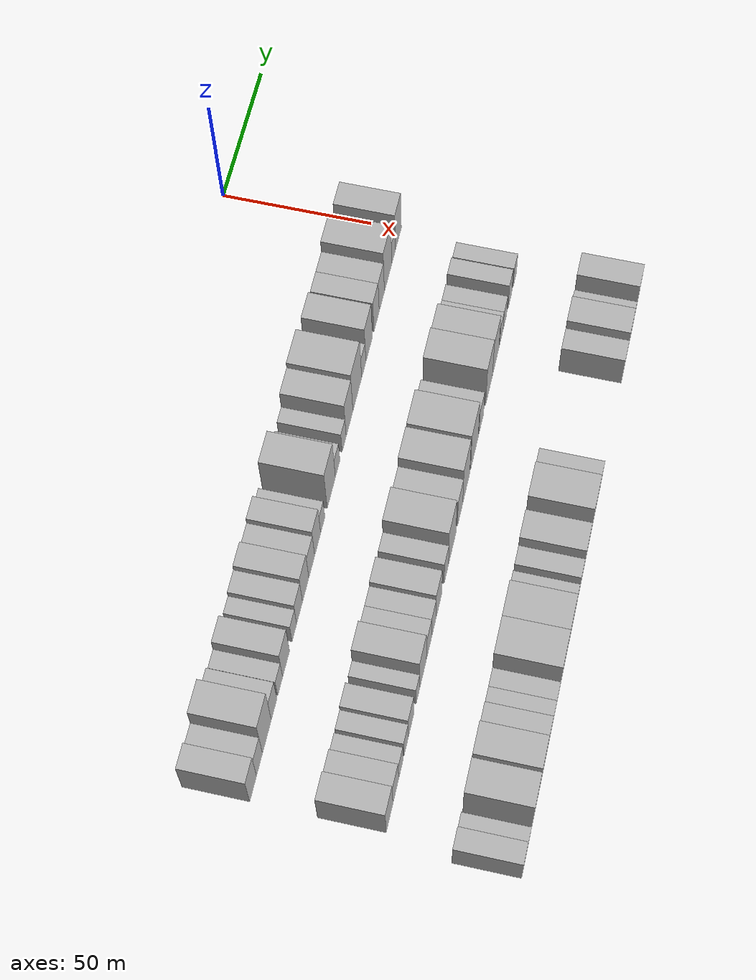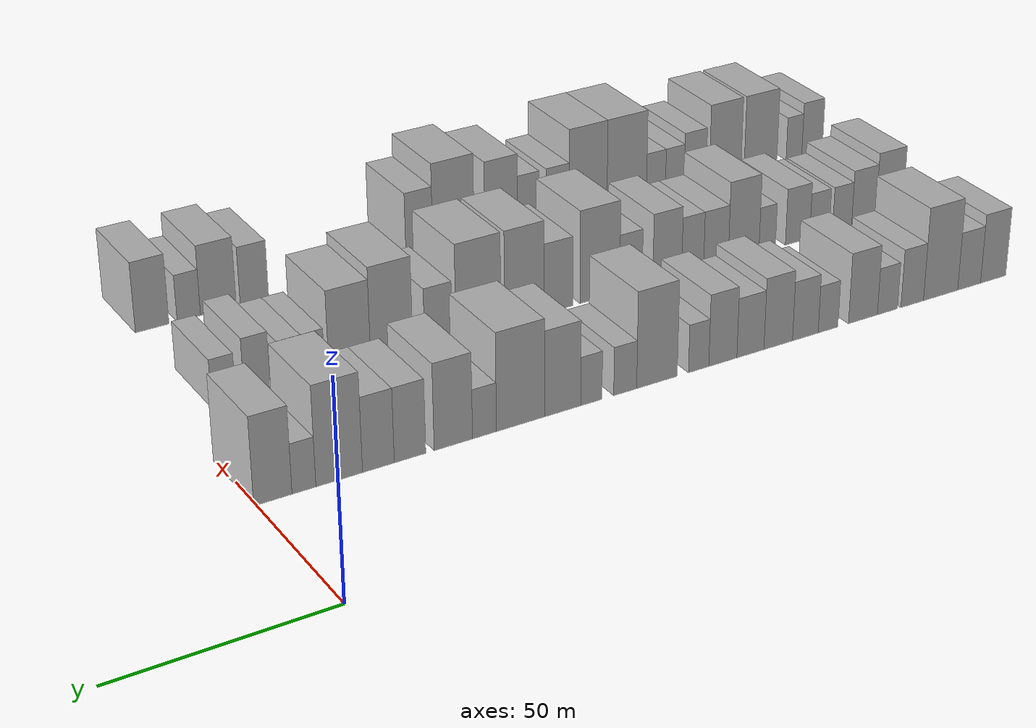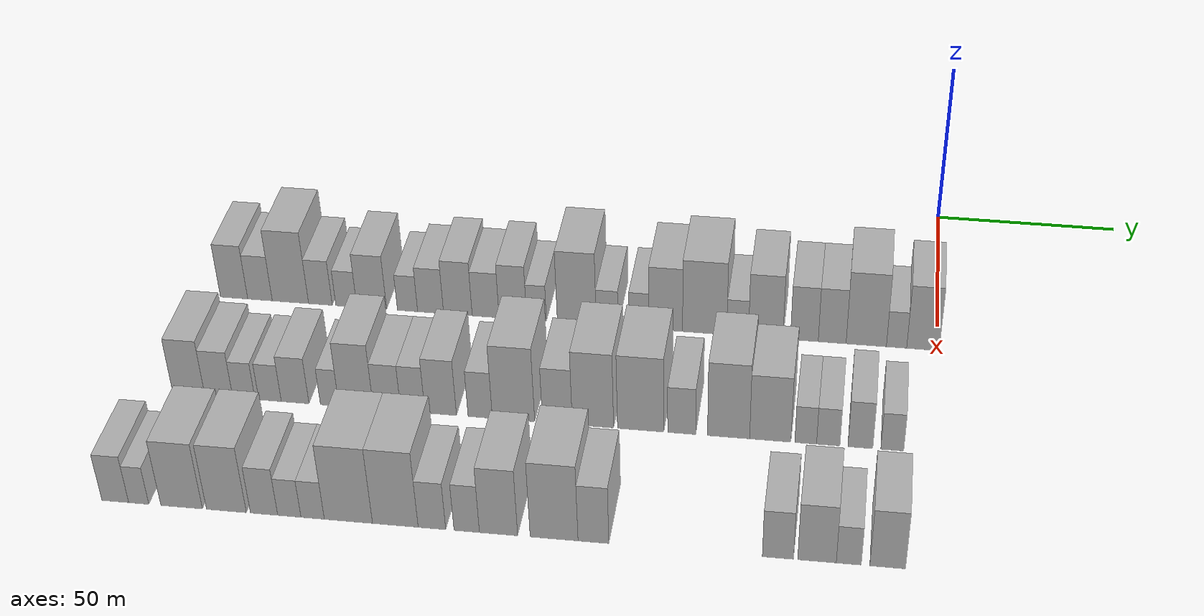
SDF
<sdf version="1.6">
 <world name="default">
  <model name="building_23">
   <static>1</static>
   <pose>50.0000 -191.5020 0 0.000000 0.000000 0.000000</pose>
   <link name="link">
    <pose>0 0 9.00 0 0 0</pose>
    <collision name="collision"><geometry><box><size>20.0000 7.6802 18.0000</size></box></geometry></collision>
    <visual name="visual">
     <cast_shadows>0</cast_shadows>
     <geometry><box><size>20.0000 7.6802 18.0000</size></box></geometry>
     <material>
      <script>
       <uri>model://HANNAS_wall/materials/scripts</uri>
       <uri>model://HANNAS_wall/materials/textures</uri>
       <name>vrc/HANNAS_wall</name>
      </script>
     </material>
    </visual>
   </link>
  </model>
  <model name="building_24">
   <static>1</static>
   <pose>50.0000 -184.2094 0 0.000000 0.000000 0.000000</pose>
   <link name="link">
    <pose>0 0 7.50 0 0 0</pose>
    <collision name="collision"><geometry><box><size>20.0000 6.9049 15.0000</size></box></geometry></collision>
    <visual name="visual">
     <cast_shadows>0</cast_shadows>
     <geometry><box><size>20.0000 6.9049 15.0000</size></box></geometry>
     <material>
      <script>
       <uri>model://HANNAS_wall/materials/scripts</uri>
       <uri>model://HANNAS_wall/materials/textures</uri>
       <name>vrc/HANNAS_wall</name>
      </script>
     </material>
    </visual>
   </link>
  </model>
  <model name="building_25">
   <static>1</static>
   <pose>50.0000 -175.6694 0 0.000000 0.000000 0.000000</pose>
   <link name="link">
    <pose>0 0 12.00 0 0 0</pose>
    <collision name="collision"><geometry><box><size>20.0000 10.1751 24.0000</size></box></geometry></collision>
    <visual name="visual">
     <cast_shadows>0</cast_shadows>
     <geometry><box><size>20.0000 10.1751 24.0000</size></box></geometry>
     <material>
      <script>
       <uri>model://HANNAS_wall/materials/scripts</uri>
       <uri>model://HANNAS_wall/materials/textures</uri>
       <name>vrc/HANNAS_wall</name>
      </script>
     </material>
    </visual>
   </link>
  </model>
  <model name="building_26">
   <static>1</static>
   <pose>50.0000 -167.2690 0 0.000000 0.000000 0.000000</pose>
   <link name="link">
    <pose>0 0 7.50 0 0 0</pose>
    <collision name="collision"><geometry><box><size>20.0000 6.6258 15.0000</size></box></geometry></collision>
    <visual name="visual">
     <cast_shadows>0</cast_shadows>
     <geometry><box><size>20.0000 6.6258 15.0000</size></box></geometry>
     <material>
      <script>
       <uri>model://HANNAS_wall/materials/scripts</uri>
       <uri>model://HANNAS_wall/materials/textures</uri>
       <name>vrc/HANNAS_wall</name>
      </script>
     </material>
    </visual>
   </link>
  </model>
  <model name="building_27">
   <static>1</static>
   <pose>50.0000 -160.0343 0 0.000000 0.000000 0.000000</pose>
   <link name="link">
    <pose>0 0 6.00 0 0 0</pose>
    <collision name="collision"><geometry><box><size>20.0000 5.8437 12.0000</size></box></geometry></collision>
    <visual name="visual">
     <cast_shadows>0</cast_shadows>
     <geometry><box><size>20.0000 5.8437 12.0000</size></box></geometry>
     <material>
      <script>
       <uri>model://HANNAS_wall/materials/scripts</uri>
       <uri>model://HANNAS_wall/materials/textures</uri>
       <name>vrc/HANNAS_wall</name>
      </script>
     </material>
    </visual>
   </link>
  </model>
  <model name="building_28">
   <static>1</static>
   <pose>50.0000 -152.9661 0 0.000000 0.000000 0.000000</pose>
   <link name="link">
    <pose>0 0 9.00 0 0 0</pose>
    <collision name="collision"><geometry><box><size>20.0000 8.2926 18.0000</size></box></geometry></collision>
    <visual name="visual">
     <cast_shadows>0</cast_shadows>
     <geometry><box><size>20.0000 8.2926 18.0000</size></box></geometry>
     <material>
      <script>
       <uri>model://HANNAS_wall/materials/scripts</uri>
       <uri>model://HANNAS_wall/materials/textures</uri>
       <name>vrc/HANNAS_wall</name>
      </script>
     </material>
    </visual>
   </link>
  </model>
  <model name="building_29">
   <static>1</static>
   <pose>50.0000 -143.0252 0 0.000000 0.000000 0.000000</pose>
   <link name="link">
    <pose>0 0 6.00 0 0 0</pose>
    <collision name="collision"><geometry><box><size>20.0000 5.5892 12.0000</size></box></geometry></collision>
    <visual name="visual">
     <cast_shadows>0</cast_shadows>
     <geometry><box><size>20.0000 5.5892 12.0000</size></box></geometry>
     <material>
      <script>
       <uri>model://HANNAS_wall/materials/scripts</uri>
       <uri>model://HANNAS_wall/materials/textures</uri>
       <name>vrc/HANNAS_wall</name>
      </script>
     </material>
    </visual>
   </link>
  </model>
  <model name="building_30">
   <static>1</static>
   <pose>50.0000 -136.6404 0 0.000000 0.000000 0.000000</pose>
   <link name="link">
    <pose>0 0 7.50 0 0 0</pose>
    <collision name="collision"><geometry><box><size>20.0000 7.1805 15.0000</size></box></geometry></collision>
    <visual name="visual">
     <cast_shadows>0</cast_shadows>
     <geometry><box><size>20.0000 7.1805 15.0000</size></box></geometry>
     <material>
      <script>
       <uri>model://HANNAS_wall/materials/scripts</uri>
       <uri>model://HANNAS_wall/materials/textures</uri>
       <name>vrc/HANNAS_wall</name>
      </script>
     </material>
    </visual>
   </link>
  </model>
  <model name="building_31">
   <static>1</static>
   <pose>50.0000 -129.1069 0 0.000000 0.000000 0.000000</pose>
   <link name="link">
    <pose>0 0 9.00 0 0 0</pose>
    <collision name="collision"><geometry><box><size>20.0000 7.8865 18.0000</size></box></geometry></collision>
    <visual name="visual">
     <cast_shadows>0</cast_shadows>
     <geometry><box><size>20.0000 7.8865 18.0000</size></box></geometry>
     <material>
      <script>
       <uri>model://HANNAS_wall/materials/scripts</uri>
       <uri>model://HANNAS_wall/materials/textures</uri>
       <name>vrc/HANNAS_wall</name>
      </script>
     </material>
    </visual>
   </link>
  </model>
  <model name="building_32">
   <static>1</static>
   <pose>50.0000 -121.4697 0 0.000000 0.000000 0.000000</pose>
   <link name="link">
    <pose>0 0 7.50 0 0 0</pose>
    <collision name="collision"><geometry><box><size>20.0000 7.3879 15.0000</size></box></geometry></collision>
    <visual name="visual">
     <cast_shadows>0</cast_shadows>
     <geometry><box><size>20.0000 7.3879 15.0000</size></box></geometry>
     <material>
      <script>
       <uri>model://HANNAS_wall/materials/scripts</uri>
       <uri>model://HANNAS_wall/materials/textures</uri>
       <name>vrc/HANNAS_wall</name>
      </script>
     </material>
    </visual>
   </link>
  </model>
  <model name="building_33">
   <static>1</static>
   <pose>50.0000 -113.9936 0 0.000000 0.000000 0.000000</pose>
   <link name="link">
    <pose>0 0 9.00 0 0 0</pose>
    <collision name="collision"><geometry><box><size>20.0000 7.5643 18.0000</size></box></geometry></collision>
    <visual name="visual">
     <cast_shadows>0</cast_shadows>
     <geometry><box><size>20.0000 7.5643 18.0000</size></box></geometry>
     <material>
      <script>
       <uri>model://HANNAS_wall/materials/scripts</uri>
       <uri>model://HANNAS_wall/materials/textures</uri>
       <name>vrc/HANNAS_wall</name>
      </script>
     </material>
    </visual>
   </link>
  </model>
  <model name="building_34">
   <static>1</static>
   <pose>50.0000 -107.5072 0 0.000000 0.000000 0.000000</pose>
   <link name="link">
    <pose>0 0 6.00 0 0 0</pose>
    <collision name="collision"><geometry><box><size>20.0000 5.4086 12.0000</size></box></geometry></collision>
    <visual name="visual">
     <cast_shadows>0</cast_shadows>
     <geometry><box><size>20.0000 5.4086 12.0000</size></box></geometry>
     <material>
      <script>
       <uri>model://HANNAS_wall/materials/scripts</uri>
       <uri>model://HANNAS_wall/materials/textures</uri>
       <name>vrc/HANNAS_wall</name>
      </script>
     </material>
    </visual>
   </link>
  </model>
  <model name="building_35">
   <static>1</static>
   <pose>50.0000 -96.5048 0 0.000000 0.000000 0.000000</pose>
   <link name="link">
    <pose>0 0 12.00 0 0 0</pose>
    <collision name="collision"><geometry><box><size>20.0000 10.5963 24.0000</size></box></geometry></collision>
    <visual name="visual">
     <cast_shadows>0</cast_shadows>
     <geometry><box><size>20.0000 10.5963 24.0000</size></box></geometry>
     <material>
      <script>
       <uri>model://HANNAS_wall/materials/scripts</uri>
       <uri>model://HANNAS_wall/materials/textures</uri>
       <name>vrc/HANNAS_wall</name>
      </script>
     </material>
    </visual>
   </link>
  </model>
  <model name="building_36">
   <static>1</static>
   <pose>50.0000 -88.2422 0 0.000000 0.000000 0.000000</pose>
   <link name="link">
    <pose>0 0 6.00 0 0 0</pose>
    <collision name="collision"><geometry><box><size>20.0000 5.9288 12.0000</size></box></geometry></collision>
    <visual name="visual">
     <cast_shadows>0</cast_shadows>
     <geometry><box><size>20.0000 5.9288 12.0000</size></box></geometry>
     <material>
      <script>
       <uri>model://HANNAS_wall/materials/scripts</uri>
       <uri>model://HANNAS_wall/materials/textures</uri>
       <name>vrc/HANNAS_wall</name>
      </script>
     </material>
    </visual>
   </link>
  </model>
  <model name="building_37">
   <static>1</static>
   <pose>50.0000 -79.5897 0 0.000000 0.000000 0.000000</pose>
   <link name="link">
    <pose>0 0 6.00 0 0 0</pose>
    <collision name="collision"><geometry><box><size>20.0000 5.3763 12.0000</size></box></geometry></collision>
    <visual name="visual">
     <cast_shadows>0</cast_shadows>
     <geometry><box><size>20.0000 5.3763 12.0000</size></box></geometry>
     <material>
      <script>
       <uri>model://HANNAS_wall/materials/scripts</uri>
       <uri>model://HANNAS_wall/materials/textures</uri>
       <name>vrc/HANNAS_wall</name>
      </script>
     </material>
    </visual>
   </link>
  </model>
  <model name="building_38">
   <static>1</static>
   <pose>50.0000 -72.3623 0 0.000000 0.000000 0.000000</pose>
   <link name="link">
    <pose>0 0 10.50 0 0 0</pose>
    <collision name="collision"><geometry><box><size>20.0000 9.0786 21.0000</size></box></geometry></collision>
    <visual name="visual">
     <cast_shadows>0</cast_shadows>
     <geometry><box><size>20.0000 9.0786 21.0000</size></box></geometry>
     <material>
      <script>
       <uri>model://HANNAS_wall/materials/scripts</uri>
       <uri>model://HANNAS_wall/materials/textures</uri>
       <name>vrc/HANNAS_wall</name>
      </script>
     </material>
    </visual>
   </link>
  </model>
  <model name="building_39">
   <static>1</static>
   <pose>50.0000 -61.8689 0 0.000000 0.000000 0.000000</pose>
   <link name="link">
    <pose>0 0 12.00 0 0 0</pose>
    <collision name="collision"><geometry><box><size>20.0000 11.9081 24.0000</size></box></geometry></collision>
    <visual name="visual">
     <cast_shadows>0</cast_shadows>
     <geometry><box><size>20.0000 11.9081 24.0000</size></box></geometry>
     <material>
      <script>
       <uri>model://HANNAS_wall/materials/scripts</uri>
       <uri>model://HANNAS_wall/materials/textures</uri>
       <name>vrc/HANNAS_wall</name>
      </script>
     </material>
    </visual>
   </link>
  </model>
  <model name="building_40">
   <static>1</static>
   <pose>50.0000 -53.0002 0 0.000000 0.000000 0.000000</pose>
   <link name="link">
    <pose>0 0 6.00 0 0 0</pose>
    <collision name="collision"><geometry><box><size>20.0000 5.8294 12.0000</size></box></geometry></collision>
    <visual name="visual">
     <cast_shadows>0</cast_shadows>
     <geometry><box><size>20.0000 5.8294 12.0000</size></box></geometry>
     <material>
      <script>
       <uri>model://HANNAS_wall/materials/scripts</uri>
       <uri>model://HANNAS_wall/materials/textures</uri>
       <name>vrc/HANNAS_wall</name>
      </script>
     </material>
    </visual>
   </link>
  </model>
  <model name="building_41">
   <static>1</static>
   <pose>50.0000 -45.4826 0 0.000000 0.000000 0.000000</pose>
   <link name="link">
    <pose>0 0 10.50 0 0 0</pose>
    <collision name="collision"><geometry><box><size>20.0000 9.2058 21.0000</size></box></geometry></collision>
    <visual name="visual">
     <cast_shadows>0</cast_shadows>
     <geometry><box><size>20.0000 9.2058 21.0000</size></box></geometry>
     <material>
      <script>
       <uri>model://HANNAS_wall/materials/scripts</uri>
       <uri>model://HANNAS_wall/materials/textures</uri>
       <name>vrc/HANNAS_wall</name>
      </script>
     </material>
    </visual>
   </link>
  </model>
  <model name="building_42">
   <static>1</static>
   <pose>50.0000 -35.1755 0 0.000000 0.000000 0.000000</pose>
   <link name="link">
    <pose>0 0 9.00 0 0 0</pose>
    <collision name="collision"><geometry><box><size>20.0000 7.4083 18.0000</size></box></geometry></collision>
    <visual name="visual">
     <cast_shadows>0</cast_shadows>
     <geometry><box><size>20.0000 7.4083 18.0000</size></box></geometry>
     <material>
      <script>
       <uri>model://HANNAS_wall/materials/scripts</uri>
       <uri>model://HANNAS_wall/materials/textures</uri>
       <name>vrc/HANNAS_wall</name>
      </script>
     </material>
    </visual>
   </link>
  </model>
  <model name="building_43">
   <static>1</static>
   <pose>50.0000 -27.7676 0 0.000000 0.000000 0.000000</pose>
   <link name="link">
    <pose>0 0 9.00 0 0 0</pose>
    <collision name="collision"><geometry><box><size>20.0000 7.4075 18.0000</size></box></geometry></collision>
    <visual name="visual">
     <cast_shadows>0</cast_shadows>
     <geometry><box><size>20.0000 7.4075 18.0000</size></box></geometry>
     <material>
      <script>
       <uri>model://HANNAS_wall/materials/scripts</uri>
       <uri>model://HANNAS_wall/materials/textures</uri>
       <name>vrc/HANNAS_wall</name>
      </script>
     </material>
    </visual>
   </link>
  </model>
  <model name="building_44">
   <static>1</static>
   <pose>50.0000 -18.7248 0 0.000000 0.000000 0.000000</pose>
   <link name="link">
    <pose>0 0 12.00 0 0 0</pose>
    <collision name="collision"><geometry><box><size>20.0000 10.6780 24.0000</size></box></geometry></collision>
    <visual name="visual">
     <cast_shadows>0</cast_shadows>
     <geometry><box><size>20.0000 10.6780 24.0000</size></box></geometry>
     <material>
      <script>
       <uri>model://HANNAS_wall/materials/scripts</uri>
       <uri>model://HANNAS_wall/materials/textures</uri>
       <name>vrc/HANNAS_wall</name>
      </script>
     </material>
    </visual>
   </link>
  </model>
  <model name="building_45">
   <static>1</static>
   <pose>50.0000 -10.6972 0 0.000000 0.000000 0.000000</pose>
   <link name="link">
    <pose>0 0 6.00 0 0 0</pose>
    <collision name="collision"><geometry><box><size>20.0000 5.3772 12.0000</size></box></geometry></collision>
    <visual name="visual">
     <cast_shadows>0</cast_shadows>
     <geometry><box><size>20.0000 5.3772 12.0000</size></box></geometry>
     <material>
      <script>
       <uri>model://HANNAS_wall/materials/scripts</uri>
       <uri>model://HANNAS_wall/materials/textures</uri>
       <name>vrc/HANNAS_wall</name>
      </script>
     </material>
    </visual>
   </link>
  </model>
  <model name="building_46">
   <static>1</static>
   <pose>50.0000 -3.7331 0 0.000000 0.000000 0.000000</pose>
   <link name="link">
    <pose>0 0 10.50 0 0 0</pose>
    <collision name="collision"><geometry><box><size>20.0000 8.5511 21.0000</size></box></geometry></collision>
    <visual name="visual">
     <cast_shadows>0</cast_shadows>
     <geometry><box><size>20.0000 8.5511 21.0000</size></box></geometry>
     <material>
      <script>
       <uri>model://HANNAS_wall/materials/scripts</uri>
       <uri>model://HANNAS_wall/materials/textures</uri>
       <name>vrc/HANNAS_wall</name>
      </script>
     </material>
    </visual>
   </link>
  </model>
  <model name="building_111">
   <static>1</static>
   <pose>90.0000 -191.3999 0 0.000000 0.000000 0.000000</pose>
   <link name="link">
    <pose>0 0 9.00 0 0 0</pose>
    <collision name="collision"><geometry><box><size>20.0000 8.4954 18.0000</size></box></geometry></collision>
    <visual name="visual">
     <cast_shadows>0</cast_shadows>
     <geometry><box><size>20.0000 8.4954 18.0000</size></box></geometry>
     <material>
      <script>
       <uri>model://HANNAS_wall/materials/scripts</uri>
       <uri>model://HANNAS_wall/materials/textures</uri>
       <name>vrc/HANNAS_wall</name>
      </script>
     </material>
    </visual>
   </link>
  </model>
  <model name="building_112">
   <static>1</static>
   <pose>90.0000 -183.4372 0 0.000000 0.000000 0.000000</pose>
   <link name="link">
    <pose>0 0 7.50 0 0 0</pose>
    <collision name="collision"><geometry><box><size>20.0000 7.4302 15.0000</size></box></geometry></collision>
    <visual name="visual">
     <cast_shadows>0</cast_shadows>
     <geometry><box><size>20.0000 7.4302 15.0000</size></box></geometry>
     <material>
      <script>
       <uri>model://HANNAS_wall/materials/scripts</uri>
       <uri>model://HANNAS_wall/materials/textures</uri>
       <name>vrc/HANNAS_wall</name>
      </script>
     </material>
    </visual>
   </link>
  </model>
  <model name="building_113">
   <static>1</static>
   <pose>90.0000 -176.7924 0 0.000000 0.000000 0.000000</pose>
   <link name="link">
    <pose>0 0 6.00 0 0 0</pose>
    <collision name="collision"><geometry><box><size>20.0000 5.8593 12.0000</size></box></geometry></collision>
    <visual name="visual">
     <cast_shadows>0</cast_shadows>
     <geometry><box><size>20.0000 5.8593 12.0000</size></box></geometry>
     <material>
      <script>
       <uri>model://HANNAS_wall/materials/scripts</uri>
       <uri>model://HANNAS_wall/materials/textures</uri>
       <name>vrc/HANNAS_wall</name>
      </script>
     </material>
    </visual>
   </link>
  </model>
  <model name="building_114">
   <static>1</static>
   <pose>90.0000 -169.8938 0 0.000000 0.000000 0.000000</pose>
   <link name="link">
    <pose>0 0 6.00 0 0 0</pose>
    <collision name="collision"><geometry><box><size>20.0000 5.9379 12.0000</size></box></geometry></collision>
    <visual name="visual">
     <cast_shadows>0</cast_shadows>
     <geometry><box><size>20.0000 5.9379 12.0000</size></box></geometry>
     <material>
      <script>
       <uri>model://HANNAS_wall/materials/scripts</uri>
       <uri>model://HANNAS_wall/materials/textures</uri>
       <name>vrc/HANNAS_wall</name>
      </script>
     </material>
    </visual>
   </link>
  </model>
  <model name="building_115">
   <static>1</static>
   <pose>90.0000 -163.2886 0 0.000000 0.000000 0.000000</pose>
   <link name="link">
    <pose>0 0 7.50 0 0 0</pose>
    <collision name="collision"><geometry><box><size>20.0000 7.2726 15.0000</size></box></geometry></collision>
    <visual name="visual">
     <cast_shadows>0</cast_shadows>
     <geometry><box><size>20.0000 7.2726 15.0000</size></box></geometry>
     <material>
      <script>
       <uri>model://HANNAS_wall/materials/scripts</uri>
       <uri>model://HANNAS_wall/materials/textures</uri>
       <name>vrc/HANNAS_wall</name>
      </script>
     </material>
    </visual>
   </link>
  </model>
  <model name="building_116">
   <static>1</static>
   <pose>90.0000 -154.2162 0 0.000000 0.000000 0.000000</pose>
   <link name="link">
    <pose>0 0 6.00 0 0 0</pose>
    <collision name="collision"><geometry><box><size>20.0000 4.8722 12.0000</size></box></geometry></collision>
    <visual name="visual">
     <cast_shadows>0</cast_shadows>
     <geometry><box><size>20.0000 4.8722 12.0000</size></box></geometry>
     <material>
      <script>
       <uri>model://HANNAS_wall/materials/scripts</uri>
       <uri>model://HANNAS_wall/materials/textures</uri>
       <name>vrc/HANNAS_wall</name>
      </script>
     </material>
    </visual>
   </link>
  </model>
  <model name="building_117">
   <static>1</static>
   <pose>90.0000 -147.2846 0 0.000000 0.000000 0.000000</pose>
   <link name="link">
    <pose>0 0 10.50 0 0 0</pose>
    <collision name="collision"><geometry><box><size>20.0000 8.9911 21.0000</size></box></geometry></collision>
    <visual name="visual">
     <cast_shadows>0</cast_shadows>
     <geometry><box><size>20.0000 8.9911 21.0000</size></box></geometry>
     <material>
      <script>
       <uri>model://HANNAS_wall/materials/scripts</uri>
       <uri>model://HANNAS_wall/materials/textures</uri>
       <name>vrc/HANNAS_wall</name>
      </script>
     </material>
    </visual>
   </link>
  </model>
  <model name="building_118">
   <static>1</static>
   <pose>90.0000 -139.2243 0 0.000000 0.000000 0.000000</pose>
   <link name="link">
    <pose>0 0 7.50 0 0 0</pose>
    <collision name="collision"><geometry><box><size>20.0000 7.1295 15.0000</size></box></geometry></collision>
    <visual name="visual">
     <cast_shadows>0</cast_shadows>
     <geometry><box><size>20.0000 7.1295 15.0000</size></box></geometry>
     <material>
      <script>
       <uri>model://HANNAS_wall/materials/scripts</uri>
       <uri>model://HANNAS_wall/materials/textures</uri>
       <name>vrc/HANNAS_wall</name>
      </script>
     </material>
    </visual>
   </link>
  </model>
  <model name="building_119">
   <static>1</static>
   <pose>90.0000 -132.5127 0 0.000000 0.000000 0.000000</pose>
   <link name="link">
    <pose>0 0 7.50 0 0 0</pose>
    <collision name="collision"><geometry><box><size>20.0000 6.2936 15.0000</size></box></geometry></collision>
    <visual name="visual">
     <cast_shadows>0</cast_shadows>
     <geometry><box><size>20.0000 6.2936 15.0000</size></box></geometry>
     <material>
      <script>
       <uri>model://HANNAS_wall/materials/scripts</uri>
       <uri>model://HANNAS_wall/materials/textures</uri>
       <name>vrc/HANNAS_wall</name>
      </script>
     </material>
    </visual>
   </link>
  </model>
  <model name="building_120">
   <static>1</static>
   <pose>90.0000 -125.2887 0 0.000000 0.000000 0.000000</pose>
   <link name="link">
    <pose>0 0 9.00 0 0 0</pose>
    <collision name="collision"><geometry><box><size>20.0000 8.1542 18.0000</size></box></geometry></collision>
    <visual name="visual">
     <cast_shadows>0</cast_shadows>
     <geometry><box><size>20.0000 8.1542 18.0000</size></box></geometry>
     <material>
      <script>
       <uri>model://HANNAS_wall/materials/scripts</uri>
       <uri>model://HANNAS_wall/materials/textures</uri>
       <name>vrc/HANNAS_wall</name>
      </script>
     </material>
    </visual>
   </link>
  </model>
  <model name="building_121">
   <static>1</static>
   <pose>90.0000 -115.0782 0 0.000000 0.000000 0.000000</pose>
   <link name="link">
    <pose>0 0 7.50 0 0 0</pose>
    <collision name="collision"><geometry><box><size>20.0000 6.2668 15.0000</size></box></geometry></collision>
    <visual name="visual">
     <cast_shadows>0</cast_shadows>
     <geometry><box><size>20.0000 6.2668 15.0000</size></box></geometry>
     <material>
      <script>
       <uri>model://HANNAS_wall/materials/scripts</uri>
       <uri>model://HANNAS_wall/materials/textures</uri>
       <name>vrc/HANNAS_wall</name>
      </script>
     </material>
    </visual>
   </link>
  </model>
  <model name="building_122">
   <static>1</static>
   <pose>90.0000 -106.4987 0 0.000000 0.000000 0.000000</pose>
   <link name="link">
    <pose>0 0 12.00 0 0 0</pose>
    <collision name="collision"><geometry><box><size>20.0000 10.8923 24.0000</size></box></geometry></collision>
    <visual name="visual">
     <cast_shadows>0</cast_shadows>
     <geometry><box><size>20.0000 10.8923 24.0000</size></box></geometry>
     <material>
      <script>
       <uri>model://HANNAS_wall/materials/scripts</uri>
       <uri>model://HANNAS_wall/materials/textures</uri>
       <name>vrc/HANNAS_wall</name>
      </script>
     </material>
    </visual>
   </link>
  </model>
  <model name="building_123">
   <static>1</static>
   <pose>90.0000 -95.2301 0 0.000000 0.000000 0.000000</pose>
   <link name="link">
    <pose>0 0 9.00 0 0 0</pose>
    <collision name="collision"><geometry><box><size>20.0000 7.6449 18.0000</size></box></geometry></collision>
    <visual name="visual">
     <cast_shadows>0</cast_shadows>
     <geometry><box><size>20.0000 7.6449 18.0000</size></box></geometry>
     <material>
      <script>
       <uri>model://HANNAS_wall/materials/scripts</uri>
       <uri>model://HANNAS_wall/materials/textures</uri>
       <name>vrc/HANNAS_wall</name>
      </script>
     </material>
    </visual>
   </link>
  </model>
  <model name="building_124">
   <static>1</static>
   <pose>90.0000 -86.1381 0 0.000000 0.000000 0.000000</pose>
   <link name="link">
    <pose>0 0 12.00 0 0 0</pose>
    <collision name="collision"><geometry><box><size>20.0000 10.5391 24.0000</size></box></geometry></collision>
    <visual name="visual">
     <cast_shadows>0</cast_shadows>
     <geometry><box><size>20.0000 10.5391 24.0000</size></box></geometry>
     <material>
      <script>
       <uri>model://HANNAS_wall/materials/scripts</uri>
       <uri>model://HANNAS_wall/materials/textures</uri>
       <name>vrc/HANNAS_wall</name>
      </script>
     </material>
    </visual>
   </link>
  </model>
  <model name="building_125">
   <static>1</static>
   <pose>90.0000 -73.9983 0 0.000000 0.000000 0.000000</pose>
   <link name="link">
    <pose>0 0 12.00 0 0 0</pose>
    <collision name="collision"><geometry><box><size>20.0000 11.7405 24.0000</size></box></geometry></collision>
    <visual name="visual">
     <cast_shadows>0</cast_shadows>
     <geometry><box><size>20.0000 11.7405 24.0000</size></box></geometry>
     <material>
      <script>
       <uri>model://HANNAS_wall/materials/scripts</uri>
       <uri>model://HANNAS_wall/materials/textures</uri>
       <name>vrc/HANNAS_wall</name>
      </script>
     </material>
    </visual>
   </link>
  </model>
  <model name="building_126">
   <static>1</static>
   <pose>90.0000 -63.5838 0 0.000000 0.000000 0.000000</pose>
   <link name="link">
    <pose>0 0 7.50 0 0 0</pose>
    <collision name="collision"><geometry><box><size>20.0000 7.0884 15.0000</size></box></geometry></collision>
    <visual name="visual">
     <cast_shadows>0</cast_shadows>
     <geometry><box><size>20.0000 7.0884 15.0000</size></box></geometry>
     <material>
      <script>
       <uri>model://HANNAS_wall/materials/scripts</uri>
       <uri>model://HANNAS_wall/materials/textures</uri>
       <name>vrc/HANNAS_wall</name>
      </script>
     </material>
    </visual>
   </link>
  </model>
  <model name="building_127">
   <static>1</static>
   <pose>90.0000 -51.7346 0 0.000000 0.000000 0.000000</pose>
   <link name="link">
    <pose>0 0 12.00 0 0 0</pose>
    <collision name="collision"><geometry><box><size>20.0000 10.6100 24.0000</size></box></geometry></collision>
    <visual name="visual">
     <cast_shadows>0</cast_shadows>
     <geometry><box><size>20.0000 10.6100 24.0000</size></box></geometry>
     <material>
      <script>
       <uri>model://HANNAS_wall/materials/scripts</uri>
       <uri>model://HANNAS_wall/materials/textures</uri>
       <name>vrc/HANNAS_wall</name>
      </script>
     </material>
    </visual>
   </link>
  </model>
  <model name="building_128">
   <static>1</static>
   <pose>90.0000 -41.2557 0 0.000000 0.000000 0.000000</pose>
   <link name="link">
    <pose>0 0 10.50 0 0 0</pose>
    <collision name="collision"><geometry><box><size>20.0000 10.3477 21.0000</size></box></geometry></collision>
    <visual name="visual">
     <cast_shadows>0</cast_shadows>
     <geometry><box><size>20.0000 10.3477 21.0000</size></box></geometry>
     <material>
      <script>
       <uri>model://HANNAS_wall/materials/scripts</uri>
       <uri>model://HANNAS_wall/materials/textures</uri>
       <name>vrc/HANNAS_wall</name>
      </script>
     </material>
    </visual>
   </link>
  </model>
  <model name="building_129">
   <static>1</static>
   <pose>90.0000 -32.3605 0 0.000000 0.000000 0.000000</pose>
   <link name="link">
    <pose>0 0 6.00 0 0 0</pose>
    <collision name="collision"><geometry><box><size>20.0000 5.4427 12.0000</size></box></geometry></collision>
    <visual name="visual">
     <cast_shadows>0</cast_shadows>
     <geometry><box><size>20.0000 5.4427 12.0000</size></box></geometry>
     <material>
      <script>
       <uri>model://HANNAS_wall/materials/scripts</uri>
       <uri>model://HANNAS_wall/materials/textures</uri>
       <name>vrc/HANNAS_wall</name>
      </script>
     </material>
    </visual>
   </link>
  </model>
  <model name="building_130">
   <static>1</static>
   <pose>90.0000 -26.7280 0 0.000000 0.000000 0.000000</pose>
   <link name="link">
    <pose>0 0 6.00 0 0 0</pose>
    <collision name="collision"><geometry><box><size>20.0000 5.8224 12.0000</size></box></geometry></collision>
    <visual name="visual">
     <cast_shadows>0</cast_shadows>
     <geometry><box><size>20.0000 5.8224 12.0000</size></box></geometry>
     <material>
      <script>
       <uri>model://HANNAS_wall/materials/scripts</uri>
       <uri>model://HANNAS_wall/materials/textures</uri>
       <name>vrc/HANNAS_wall</name>
      </script>
     </material>
    </visual>
   </link>
  </model>
  <model name="building_131">
   <static>1</static>
   <pose>90.0000 -18.7254 0 0.000000 0.000000 0.000000</pose>
   <link name="link">
    <pose>0 0 7.50 0 0 0</pose>
    <collision name="collision"><geometry><box><size>20.0000 6.1828 15.0000</size></box></geometry></collision>
    <visual name="visual">
     <cast_shadows>0</cast_shadows>
     <geometry><box><size>20.0000 6.1828 15.0000</size></box></geometry>
     <material>
      <script>
       <uri>model://HANNAS_wall/materials/scripts</uri>
       <uri>model://HANNAS_wall/materials/textures</uri>
       <name>vrc/HANNAS_wall</name>
      </script>
     </material>
    </visual>
   </link>
  </model>
  <model name="building_132">
   <static>1</static>
   <pose>90.0000 -10.7985 0 0.000000 0.000000 0.000000</pose>
   <link name="link">
    <pose>0 0 6.00 0 0 0</pose>
    <collision name="collision"><geometry><box><size>20.0000 5.6709 12.0000</size></box></geometry></collision>
    <visual name="visual">
     <cast_shadows>0</cast_shadows>
     <geometry><box><size>20.0000 5.6709 12.0000</size></box></geometry>
     <material>
      <script>
       <uri>model://HANNAS_wall/materials/scripts</uri>
       <uri>model://HANNAS_wall/materials/textures</uri>
       <name>vrc/HANNAS_wall</name>
      </script>
     </material>
    </visual>
   </link>
  </model>
  <model name="building_197">
   <static>1</static>
   <pose>130.0000 -196.8026 0 0.000000 0.000000 0.000000</pose>
   <link name="link">
    <pose>0 0 7.50 0 0 0</pose>
    <collision name="collision"><geometry><box><size>20.0000 6.6764 15.0000</size></box></geometry></collision>
    <visual name="visual">
     <cast_shadows>0</cast_shadows>
     <geometry><box><size>20.0000 6.6764 15.0000</size></box></geometry>
     <material>
      <script>
       <uri>model://HANNAS_wall/materials/scripts</uri>
       <uri>model://HANNAS_wall/materials/textures</uri>
       <name>vrc/HANNAS_wall</name>
      </script>
     </material>
    </visual>
   </link>
  </model>
  <model name="building_198">
   <static>1</static>
   <pose>130.0000 -190.9548 0 0.000000 0.000000 0.000000</pose>
   <link name="link">
    <pose>0 0 6.00 0 0 0</pose>
    <collision name="collision"><geometry><box><size>20.0000 5.0191 12.0000</size></box></geometry></collision>
    <visual name="visual">
     <cast_shadows>0</cast_shadows>
     <geometry><box><size>20.0000 5.0191 12.0000</size></box></geometry>
     <material>
      <script>
       <uri>model://HANNAS_wall/materials/scripts</uri>
       <uri>model://HANNAS_wall/materials/textures</uri>
       <name>vrc/HANNAS_wall</name>
      </script>
     </material>
    </visual>
   </link>
  </model>
  <model name="building_199">
   <static>1</static>
   <pose>130.0000 -180.2744 0 0.000000 0.000000 0.000000</pose>
   <link name="link">
    <pose>0 0 10.50 0 0 0</pose>
    <collision name="collision"><geometry><box><size>20.0000 10.3417 21.0000</size></box></geometry></collision>
    <visual name="visual">
     <cast_shadows>0</cast_shadows>
     <geometry><box><size>20.0000 10.3417 21.0000</size></box></geometry>
     <material>
      <script>
       <uri>model://HANNAS_wall/materials/scripts</uri>
       <uri>model://HANNAS_wall/materials/textures</uri>
       <name>vrc/HANNAS_wall</name>
      </script>
     </material>
    </visual>
   </link>
  </model>
  <model name="building_200">
   <static>1</static>
   <pose>130.0000 -169.1721 0 0.000000 0.000000 0.000000</pose>
   <link name="link">
    <pose>0 0 10.50 0 0 0</pose>
    <collision name="collision"><geometry><box><size>20.0000 9.8630 21.0000</size></box></geometry></collision>
    <visual name="visual">
     <cast_shadows>0</cast_shadows>
     <geometry><box><size>20.0000 9.8630 21.0000</size></box></geometry>
     <material>
      <script>
       <uri>model://HANNAS_wall/materials/scripts</uri>
       <uri>model://HANNAS_wall/materials/textures</uri>
       <name>vrc/HANNAS_wall</name>
      </script>
     </material>
    </visual>
   </link>
  </model>
  <model name="building_201">
   <static>1</static>
   <pose>130.0000 -159.8825 0 0.000000 0.000000 0.000000</pose>
   <link name="link">
    <pose>0 0 7.50 0 0 0</pose>
    <collision name="collision"><geometry><box><size>20.0000 6.7161 15.0000</size></box></geometry></collision>
    <visual name="visual">
     <cast_shadows>0</cast_shadows>
     <geometry><box><size>20.0000 6.7161 15.0000</size></box></geometry>
     <material>
      <script>
       <uri>model://HANNAS_wall/materials/scripts</uri>
       <uri>model://HANNAS_wall/materials/textures</uri>
       <name>vrc/HANNAS_wall</name>
      </script>
     </material>
    </visual>
   </link>
  </model>
  <model name="building_202">
   <static>1</static>
   <pose>130.0000 -153.6751 0 0.000000 0.000000 0.000000</pose>
   <link name="link">
    <pose>0 0 6.00 0 0 0</pose>
    <collision name="collision"><geometry><box><size>20.0000 5.6987 12.0000</size></box></geometry></collision>
    <visual name="visual">
     <cast_shadows>0</cast_shadows>
     <geometry><box><size>20.0000 5.6987 12.0000</size></box></geometry>
     <material>
      <script>
       <uri>model://HANNAS_wall/materials/scripts</uri>
       <uri>model://HANNAS_wall/materials/textures</uri>
       <name>vrc/HANNAS_wall</name>
      </script>
     </material>
    </visual>
   </link>
  </model>
  <model name="building_203">
   <static>1</static>
   <pose>130.0000 -147.9579 0 0.000000 0.000000 0.000000</pose>
   <link name="link">
    <pose>0 0 6.00 0 0 0</pose>
    <collision name="collision"><geometry><box><size>20.0000 5.7356 12.0000</size></box></geometry></collision>
    <visual name="visual">
     <cast_shadows>0</cast_shadows>
     <geometry><box><size>20.0000 5.7356 12.0000</size></box></geometry>
     <material>
      <script>
       <uri>model://HANNAS_wall/materials/scripts</uri>
       <uri>model://HANNAS_wall/materials/textures</uri>
       <name>vrc/HANNAS_wall</name>
      </script>
     </material>
    </visual>
   </link>
  </model>
  <model name="building_204">
   <static>1</static>
   <pose>130.0000 -139.2034 0 0.000000 0.000000 0.000000</pose>
   <link name="link">
    <pose>0 0 12.00 0 0 0</pose>
    <collision name="collision"><geometry><box><size>20.0000 11.7734 24.0000</size></box></geometry></collision>
    <visual name="visual">
     <cast_shadows>0</cast_shadows>
     <geometry><box><size>20.0000 11.7734 24.0000</size></box></geometry>
     <material>
      <script>
       <uri>model://HANNAS_wall/materials/scripts</uri>
       <uri>model://HANNAS_wall/materials/textures</uri>
       <name>vrc/HANNAS_wall</name>
      </script>
     </material>
    </visual>
   </link>
  </model>
  <model name="building_205">
   <static>1</static>
   <pose>130.0000 -127.7660 0 0.000000 0.000000 0.000000</pose>
   <link name="link">
    <pose>0 0 12.00 0 0 0</pose>
    <collision name="collision"><geometry><box><size>20.0000 11.1015 24.0000</size></box></geometry></collision>
    <visual name="visual">
     <cast_shadows>0</cast_shadows>
     <geometry><box><size>20.0000 11.1015 24.0000</size></box></geometry>
     <material>
      <script>
       <uri>model://HANNAS_wall/materials/scripts</uri>
       <uri>model://HANNAS_wall/materials/textures</uri>
       <name>vrc/HANNAS_wall</name>
      </script>
     </material>
    </visual>
   </link>
  </model>
  <model name="building_206">
   <static>1</static>
   <pose>130.0000 -118.8741 0 0.000000 0.000000 0.000000</pose>
   <link name="link">
    <pose>0 0 7.50 0 0 0</pose>
    <collision name="collision"><geometry><box><size>20.0000 6.6824 15.0000</size></box></geometry></collision>
    <visual name="visual">
     <cast_shadows>0</cast_shadows>
     <geometry><box><size>20.0000 6.6824 15.0000</size></box></geometry>
     <material>
      <script>
       <uri>model://HANNAS_wall/materials/scripts</uri>
       <uri>model://HANNAS_wall/materials/textures</uri>
       <name>vrc/HANNAS_wall</name>
      </script>
     </material>
    </visual>
   </link>
  </model>
  <model name="building_207">
   <static>1</static>
   <pose>130.0000 -110.4616 0 0.000000 0.000000 0.000000</pose>
   <link name="link">
    <pose>0 0 7.50 0 0 0</pose>
    <collision name="collision"><geometry><box><size>20.0000 6.1426 15.0000</size></box></geometry></collision>
    <visual name="visual">
     <cast_shadows>0</cast_shadows>
     <geometry><box><size>20.0000 6.1426 15.0000</size></box></geometry>
     <material>
      <script>
       <uri>model://HANNAS_wall/materials/scripts</uri>
       <uri>model://HANNAS_wall/materials/textures</uri>
       <name>vrc/HANNAS_wall</name>
      </script>
     </material>
    </visual>
   </link>
  </model>
  <model name="building_208">
   <static>1</static>
   <pose>130.0000 -102.7885 0 0.000000 0.000000 0.000000</pose>
   <link name="link">
    <pose>0 0 10.50 0 0 0</pose>
    <collision name="collision"><geometry><box><size>20.0000 9.2037 21.0000</size></box></geometry></collision>
    <visual name="visual">
     <cast_shadows>0</cast_shadows>
     <geometry><box><size>20.0000 9.2037 21.0000</size></box></geometry>
     <material>
      <script>
       <uri>model://HANNAS_wall/materials/scripts</uri>
       <uri>model://HANNAS_wall/materials/textures</uri>
       <name>vrc/HANNAS_wall</name>
      </script>
     </material>
    </visual>
   </link>
  </model>
  <model name="building_209">
   <static>1</static>
   <pose>130.0000 -89.4536 0 0.000000 0.000000 0.000000</pose>
   <link name="link">
    <pose>0 0 12.00 0 0 0</pose>
    <collision name="collision"><geometry><box><size>20.0000 11.4661 24.0000</size></box></geometry></collision>
    <visual name="visual">
     <cast_shadows>0</cast_shadows>
     <geometry><box><size>20.0000 11.4661 24.0000</size></box></geometry>
     <material>
      <script>
       <uri>model://HANNAS_wall/materials/scripts</uri>
       <uri>model://HANNAS_wall/materials/textures</uri>
       <name>vrc/HANNAS_wall</name>
      </script>
     </material>
    </visual>
   </link>
  </model>
  <model name="building_210">
   <static>1</static>
   <pose>130.0000 -80.0445 0 0.000000 0.000000 0.000000</pose>
   <link name="link">
    <pose>0 0 9.00 0 0 0</pose>
    <collision name="collision"><geometry><box><size>20.0000 7.3522 18.0000</size></box></geometry></collision>
    <visual name="visual">
     <cast_shadows>0</cast_shadows>
     <geometry><box><size>20.0000 7.3522 18.0000</size></box></geometry>
     <material>
      <script>
       <uri>model://HANNAS_wall/materials/scripts</uri>
       <uri>model://HANNAS_wall/materials/textures</uri>
       <name>vrc/HANNAS_wall</name>
      </script>
     </material>
    </visual>
   </link>
  </model>
  <model name="building_211">
   <static>1</static>
   <pose>130.0000 -36.4277 0 0.000000 0.000000 0.000000</pose>
   <link name="link">
    <pose>0 0 7.50 0 0 0</pose>
    <collision name="collision"><geometry><box><size>20.0000 7.2938 15.0000</size></box></geometry></collision>
    <visual name="visual">
     <cast_shadows>0</cast_shadows>
     <geometry><box><size>20.0000 7.2938 15.0000</size></box></geometry>
     <material>
      <script>
       <uri>model://HANNAS_wall/materials/scripts</uri>
       <uri>model://HANNAS_wall/materials/textures</uri>
       <name>vrc/HANNAS_wall</name>
      </script>
     </material>
    </visual>
   </link>
  </model>
  <model name="building_212">
   <static>1</static>
   <pose>130.0000 -27.2890 0 0.000000 0.000000 0.000000</pose>
   <link name="link">
    <pose>0 0 9.00 0 0 0</pose>
    <collision name="collision"><geometry><box><size>20.0000 8.9837 18.0000</size></box></geometry></collision>
    <visual name="visual">
     <cast_shadows>0</cast_shadows>
     <geometry><box><size>20.0000 8.9837 18.0000</size></box></geometry>
     <material>
      <script>
       <uri>model://HANNAS_wall/materials/scripts</uri>
       <uri>model://HANNAS_wall/materials/textures</uri>
       <name>vrc/HANNAS_wall</name>
      </script>
     </material>
    </visual>
   </link>
  </model>
  <model name="building_213">
   <static>1</static>
   <pose>130.0000 -19.8829 0 0.000000 0.000000 0.000000</pose>
   <link name="link">
    <pose>0 0 6.00 0 0 0</pose>
    <collision name="collision"><geometry><box><size>20.0000 5.8285 12.0000</size></box></geometry></collision>
    <visual name="visual">
     <cast_shadows>0</cast_shadows>
     <geometry><box><size>20.0000 5.8285 12.0000</size></box></geometry>
     <material>
      <script>
       <uri>model://HANNAS_wall/materials/scripts</uri>
       <uri>model://HANNAS_wall/materials/textures</uri>
       <name>vrc/HANNAS_wall</name>
      </script>
     </material>
    </visual>
   </link>
  </model>
  <model name="building_214">
   <static>1</static>
   <pose>130.0000 -10.8361 0 0.000000 0.000000 0.000000</pose>
   <link name="link">
    <pose>0 0 9.00 0 0 0</pose>
    <collision name="collision"><geometry><box><size>20.0000 8.2651 18.0000</size></box></geometry></collision>
    <visual name="visual">
     <cast_shadows>0</cast_shadows>
     <geometry><box><size>20.0000 8.2651 18.0000</size></box></geometry>
     <material>
      <script>
       <uri>model://HANNAS_wall/materials/scripts</uri>
       <uri>model://HANNAS_wall/materials/textures</uri>
       <name>vrc/HANNAS_wall</name>
      </script>
     </material>
    </visual>
   </link>
  </model>
 </world>
</sdf>
